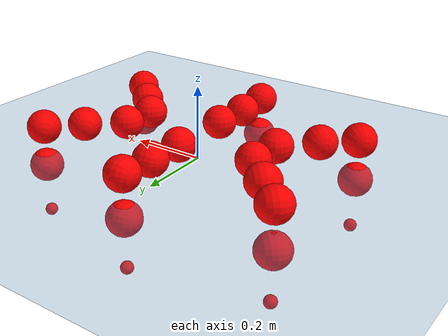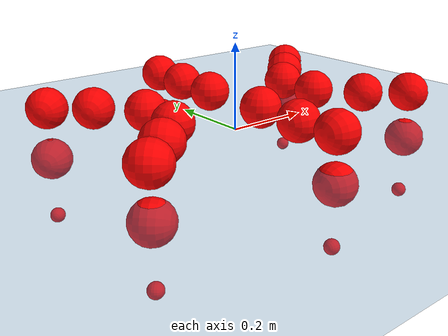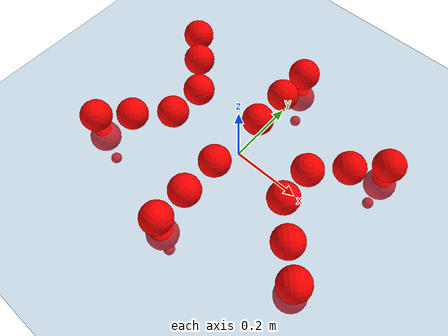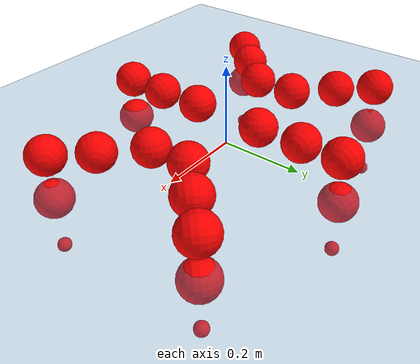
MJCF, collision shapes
<mujoco model="Golem">
  <compiler angle="radian" assetdir="assets" balanceinertia="true" inertiafromgeom="false"/>

  <option timestep="0.005" density="1.2" viscosity="2e-05"/>

  <size nkey="1"/>

  <visual>
    <quality shadowsize="8192"/>
    <map shadowclip="0.5"/>
  </visual>

  <default>
    <default class="/">
      <joint armature="0.01" damping="0.01" frictionloss="0.01"/>
      <geom contype="0" conaffinity="0" group="1" solref="-1000 -80"/>
      <site size="0.01 0.005 0.005" group="5"/>
      <general forcelimited="true" biastype="affine" gainprm="25" biasprm="0 -25 -0.5"/>
      <default class="visual">
        <geom type="mesh" group="2"/>
      </default>
      <default class="collision">
        <geom group="3"/>
      </default>
      <default class="foot">
        <geom size="0.01 0 0" condim="6" group="4" priority="1" solimp="0.015 1 0.01"/>
      </default>
      <default class="reward_collision_sphere">
        <geom group="5" rgba="1 0 0 1"/>
      </default>
    </default>
  </default>

  <asset>
    <texture type="skybox" colorspace="auto" name="//unnamed_texture_0" builtin="gradient" rgb1="0.95 0.95 0.95" rgb2="0.95 0.95 0.95" width="100" height="600"/>
    <texture type="2d" colorspace="auto" name="texplane" builtin="checker" rgb1="0.345 0.575 0.748" rgb2="0.345 0.575 0.748" markrgb="1 1 1" width="512" height="512"/>
    <material name="MatPlane" class="/" texture="texplane" texuniform="true" texrepeat="2 2" specular="0.9"/>
    <mesh name="body" class="/" file="body.stl" scale="0.001 0.001 0.001"/>
    <mesh name="coxa" class="/" file="coxa.stl" scale="0.001 0.001 0.001"/>
    <mesh name="femur" class="/" file="femur.stl" scale="0.001 0.001 0.001"/>
    <mesh name="tibia" class="/" file="tibia.stl" scale="0.001 0.001 0.001"/>
    <mesh name="tarsus" class="/" file="tarsus.stl" scale="0.001 0.001 0.001"/>
  </asset>

  <worldbody>
    <geom name="floor" class="/" size="100 100 0.125" type="plane" group="0" material="MatPlane"/>
    <light name="toplight_shadow" class="/" pos="0 0 5" dir="0.0990148 0.0990148 -0.990148" type="directional" ambient="0.04 0.04 0.04" diffuse="0.55 0.55 0.55" specular="0.12 0.12 0.12"/>
    <light name="toplight_fill" class="/" pos="0 0 5" dir="0.0990148 0.0990148 -0.990148" type="directional" castshadow="false" ambient="0.04 0.04 0.04" diffuse="0.3 0.3 0.3" specular="0.08 0.08 0.08"/>
    <body name="trunk" pos="-0.00278958 -0.000233682 -0.00229306" quat="1 0.000170286 -0.000287556 0.00017186">
      <inertial pos="0.00122204 -0.000854432 -0.00355743" quat="0.999936 0.00430572 0.00734327 -0.00749483" mass="5.33561" diaginertia="0.0340368 0.00840871 0.0205393"/>
      <joint name="//unnamed_joint_0" type="free"/>
      <geom name="//unnamed_geom_1" class="/" pos="0 0 0.0741409" quat="1 0 0 0" type="mesh" rgba="0.9 0.9 0.9 1" mesh="body"/>
      <site name="imu" class="/" pos="0.177013 -0.0049553 0.105313" size="0.0113675"/>
      <camera name="track" class="/" pos="0 -1.93531 0" quat="0.707107 0.707107 0 0" mode="trackcom"/>
      <camera name="ego_camera" class="/" pos="0.166938 0 0.115845" quat="-0.5 -0.5 0.5 0.5"/>
      <body name="coxa_RR" pos="-0.228968 -0.0774661 0.0740963" quat="0.382559 -4.39303e-05 -5.95577e-05 -0.923931">
        <inertial pos="-0.000961839 0.000467308 -0.00155032" quat="0.999908 -0.00350953 -0.00931964 -0.00918029" mass="0.282283" diaginertia="0.0347922 0.00821996 0.020063"/>
        <joint name="coxa_joint_RR" class="/" pos="0 0 0" axis="0.00787843 -0.000264591 -0.999969" range="-3.17546 3.18505" armature="0.0102037" damping="0.00078554" frictionloss="0.00994283"/>
        <geom name="//unnamed_geom_2" class="/" type="mesh" rgba="0.2 0.2 0.2 1" mesh="coxa"/>
        <geom name="//unnamed_geom_3" class="reward_collision_sphere" size="0.04547" pos="-0.0385241 0 0"/>
        <body name="femur_RR" pos="0.0764094 0.000907096 0.00172799" quat="0.499955 -0.500014 0.499722 0.500309">
          <inertial pos="-0.00164427 0.00230966 0.00170579" quat="0.999998 -0.000982437 -0.000286601 0.00180814" mass="0.293557" diaginertia="0.036026 0.00856462 0.0214023"/>
          <joint name="femur_joint_RR" class="/" pos="0 0 0" axis="-0.000236797 -0.00415339 -0.999991" range="-3.15212 3.14238" armature="0.011853" damping="0.0211707" frictionloss="0.0123164"/>
          <geom name="//unnamed_geom_4" class="/" type="mesh" rgba="0.9 0.9 0.9 1" mesh="femur"/>
          <geom name="//unnamed_geom_5" class="reward_collision_sphere" size="0.04547"/>
          <body name="tibia_RR" pos="0.00117571 -0.10328 -0.0014172" quat="0.00038249 1 0.000293189 -0.00017039">
            <inertial pos="0.00233244 -0.00126956 0.000537115" quat="0.999986 0.00487778 -0.000561156 0.00201806" mass="0.301451" diaginertia="0.0346431 0.00852388 0.0209476"/>
            <joint name="tibia_joint_RR" class="/" pos="0 0 0" axis="-0.00253439 0.00498028 0.999984" range="-3.14112 3.14272" armature="0.0106545" damping="0.0198955" frictionloss="0.00983655"/>
            <geom name="//unnamed_geom_6" class="/" type="mesh" rgba="0.2 0.2 0.2 1" mesh="tibia"/>
            <geom name="//unnamed_geom_7" class="reward_collision_sphere" size="0.04547"/>
            <body name="tarsus_RR" pos="0.11092 -0.000280556 -0.000171724" quat="1 0.000455743 0.000210846 0.000198106">
              <inertial pos="0.0746761 -0.00122412 0.000645223" quat="0.50067 0.494567 0.494841 0.50977" mass="0.301034" diaginertia="0.0356032 0.00837115 0.0204716"/>
              <joint name="tarsus_joint_RR" class="/" pos="0 0 0" axis="-0.00412756 0.00642159 0.999971" range="-3.17561 3.16972" armature="0.0108516" damping="0.0142162" frictionloss="0.0113275"/>
              <geom name="//unnamed_geom_8" class="/" type="mesh" rgba="0.9 0.9 0.9 1" mesh="tarsus"/>
              <geom name="foot_1" class="foot" size="0.0125173" pos="0.143823 0 0" quat="0 -0.707107 0 0.707107"/>
              <geom name="//unnamed_geom_10" class="reward_collision_sphere" size="0.04547"/>
              <geom name="//unnamed_geom_11" class="reward_collision_sphere" size="0.0170512" pos="0.138045 0 0"/>
              <site name="foot_1" class="foot" pos="0.143823 0 0" quat="0 -0.707107 0 0.707107" size="0.0113675"/>
            </body>
          </body>
        </body>
      </body>
      <body name="coxa_RM" pos="-0.00249869 -0.129328 0.0777027" quat="0.70721 -0.00105475 0.000150456 -0.707002">
        <inertial pos="-0.00100226 -0.00255434 -0.00063663" quat="0.999951 -0.00221604 0.00844525 -0.00461556" mass="0.300535" diaginertia="0.0362631 0.00847306 0.0215816"/>
        <joint name="coxa_joint_RM" class="/" pos="0 0 0" axis="-0.00172741 0.00526101 -0.999985" range="-3.13193 3.1237" armature="0.011634" damping="0.00472345" frictionloss="0.0119511"/>
        <geom name="//unnamed_geom_12" class="/" type="mesh" rgba="0.2 0.2 0.2 1" mesh="coxa"/>
        <geom name="//unnamed_geom_13" class="reward_collision_sphere" size="0.04547" pos="-0.0385241 0 0"/>
        <body name="femur_RM" pos="0.0759609 -0.000226397 -0.00187372" quat="0.500123 -0.500882 0.499787 0.499207">
          <inertial pos="-0.00220939 -0.00261801 -0.00167372" quat="0.999986 0.000621658 -0.00384754 0.00361726" mass="0.303225" diaginertia="0.0353214 0.00845474 0.0213633"/>
          <joint name="femur_joint_RM" class="/" pos="0 0 0" axis="-0.00851815 0.00898967 -0.999923" stiffness="0.00324117" range="-3.1374 3.18603" armature="0.0122185" damping="0.0179465" frictionloss="0.00993377"/>
          <geom name="//unnamed_geom_14" class="/" type="mesh" rgba="0.9 0.9 0.9 1" mesh="femur"/>
          <geom name="//unnamed_geom_15" class="reward_collision_sphere" size="0.04547"/>
          <body name="tibia_RM" pos="-0.00314591 -0.101451 0.00152837" quat="-0.000961108 0.999999 0.00031619 -0.000379709">
            <inertial pos="-0.000819303 1.0746e-05 0.000930341" quat="1 0.00057464 9.83091e-05 -0.000787381" mass="0.295559" diaginertia="0.036796 0.00891195 0.0209702"/>
            <joint name="tibia_joint_RM" class="/" pos="0 0 0" axis="-0.00986461 0.00508131 0.999938" range="-3.11231 3.08625" armature="0.0119175" damping="0" frictionloss="0.0124611"/>
            <geom name="//unnamed_geom_16" class="/" type="mesh" rgba="0.2 0.2 0.2 1" mesh="tibia"/>
            <geom name="//unnamed_geom_17" class="reward_collision_sphere" size="0.04547"/>
            <body name="tarsus_RM" pos="0.109165 0.000593585 -0.00210244" quat="1 0.000421939 -0.000176735 0.000146639">
              <inertial pos="0.0769952 0.000715896 0.00304696" quat="0.504047 0.509024 0.490711 0.496017" mass="0.296781" diaginertia="0.0365523 0.00858963 0.0206389"/>
              <joint name="tarsus_joint_RM" class="/" pos="0 0 0" axis="-0.0030421 0.00425037 0.999986" range="-3.19167 3.09691" armature="0.011537" damping="0.0116979" frictionloss="0.0113007"/>
              <geom name="//unnamed_geom_18" class="/" type="mesh" rgba="0.9 0.9 0.9 1" mesh="tarsus"/>
              <geom name="foot_2" class="foot" size="0.0117712" pos="0.143823 0 0" quat="0 -0.707107 0 0.707107"/>
              <geom name="//unnamed_geom_20" class="reward_collision_sphere" size="0.04547"/>
              <geom name="//unnamed_geom_21" class="reward_collision_sphere" size="0.0170512" pos="0.138045 0 0"/>
              <site name="foot_2" class="foot" pos="0.143823 0 0" quat="0 -0.707107 0 0.707107" size="0.0113675"/>
            </body>
          </body>
        </body>
      </body>
      <body name="coxa_RF" pos="0.229578 -0.0781507 0.0728839" quat="0.92378 0.000842313 0.000598449 -0.382923">
        <inertial pos="0.00155256 -0.00132123 -0.000174765" quat="0.999996 0.00159024 -0.00196439 0.00123174" mass="0.301783" diaginertia="0.0356003 0.00869832 0.0214207"/>
        <joint name="coxa_joint_RF" class="/" pos="0 0 0" axis="0.00804731 0.00659388 -0.999946" range="-3.14213 3.19422" armature="0.0119721" damping="0" frictionloss="0.0110605"/>
        <geom name="//unnamed_geom_22" class="/" type="mesh" rgba="0.2 0.2 0.2 1" mesh="coxa"/>
        <geom name="//unnamed_geom_23" class="reward_collision_sphere" size="0.04547" pos="-0.0385241 0 0"/>
        <body name="femur_RF" pos="0.0782216 -0.00170477 -0.00311054" quat="0.500203 -0.499771 0.500164 0.499861">
          <inertial pos="-0.000914262 -8.8796e-05 0.0028572" quat="0.999998 -0.00188213 0.000185356 -7.24255e-06" mass="0.291913" diaginertia="0.0350743 0.00854948 0.0216174"/>
          <joint name="femur_joint_RF" class="/" pos="0 0 0" axis="-0.000475979 0.000152519 -1" range="-3.09356 3.13439" armature="0.0113485" damping="0.0099084" frictionloss="0.00975722"/>
          <geom name="//unnamed_geom_24" class="/" type="mesh" rgba="0.9 0.9 0.9 1" mesh="femur"/>
          <geom name="//unnamed_geom_25" class="reward_collision_sphere" size="0.04547"/>
          <body name="tibia_RF" pos="-0.0035098 -0.104947 0.00216029" quat="-0.000278061 1 -5.6711e-05 -0.000102225">
            <inertial pos="0.00289969 -0.00206357 -0.00025161" quat="0.999952 -0.000912857 -0.00101304 0.00973977" mass="0.292293" diaginertia="0.0342636 0.00819189 0.0209069"/>
            <joint name="tibia_joint_RF" class="/" pos="0 0 0" axis="0.00882508 0.00971295 0.999914" range="-3.14088 3.13583" armature="0.0111458" damping="0.0151641" frictionloss="0.0119251"/>
            <geom name="//unnamed_geom_26" class="/" type="mesh" rgba="0.2 0.2 0.2 1" mesh="tibia"/>
            <geom name="//unnamed_geom_27" class="reward_collision_sphere" size="0.04547"/>
            <body name="tarsus_RF" pos="0.113874 0.000226118 -0.00124904" quat="0.999999 0.000752227 -0.000420934 -0.000912143">
              <inertial pos="0.0793704 -0.00240781 0.00124745" quat="0.501442 0.498018 0.502708 0.497814" mass="0.288162" diaginertia="0.0353039 0.00824576 0.0216002"/>
              <joint name="tarsus_joint_RF" class="/" pos="0 0 0" axis="0.0123236 0.00916345 0.999882" range="-3.19657 3.14109" armature="0.0112465" damping="0.0166132" frictionloss="0.0110312"/>
              <geom name="//unnamed_geom_28" class="/" type="mesh" rgba="0.9 0.9 0.9 1" mesh="tarsus"/>
              <geom name="foot_3" class="foot" size="0.011101" pos="0.143823 0 0" quat="0 -0.707107 0 0.707107"/>
              <geom name="//unnamed_geom_30" class="reward_collision_sphere" size="0.04547"/>
              <geom name="//unnamed_geom_31" class="reward_collision_sphere" size="0.0170512" pos="0.138045 0 0"/>
              <site name="foot_3" class="foot" pos="0.143823 0 0" quat="0 -0.707107 0 0.707107" size="0.0113675"/>
            </body>
          </body>
        </body>
      </body>
      <body name="coxa_LR" pos="-0.227074 0.0818104 0.0753996" quat="0.38265 0.000876164 -0.000550354 0.923893">
        <inertial pos="0.000635174 -9.19903e-05 0.00277371" quat="0.999986 0.00254703 0.00338585 0.00309226" mass="0.296295" diaginertia="0.0354011 0.00869584 0.0205662"/>
        <joint name="coxa_joint_LR" class="/" pos="0 0 0" axis="-0.00071044 -2.33418e-05 -1" range="-3.1807 3.1565" armature="0.010443" damping="0.00363431" frictionloss="0.0101202"/>
        <geom name="//unnamed_geom_32" class="/" type="mesh" rgba="0.2 0.2 0.2 1" mesh="coxa"/>
        <geom name="//unnamed_geom_33" class="reward_collision_sphere" size="0.04547" pos="-0.0385241 0 0"/>
        <body name="femur_LR" pos="0.0757009 -0.00357067 0.000298291" quat="0.500095 -0.499982 0.499867 0.500056">
          <inertial pos="0.00257318 -0.00200413 0.00274113" quat="0.999983 -0.00356413 0.00355319 -0.00302156" mass="0.287185" diaginertia="0.0351487 0.00844697 0.0210511"/>
          <joint name="femur_joint_LR" class="/" pos="0 0 0" axis="-0.00538803 -0.00380128 0.999978" range="-3.17554 3.0919" armature="0.0100758" damping="0" frictionloss="0.011509"/>
          <geom name="//unnamed_geom_34" class="/" type="mesh" rgba="0.9 0.9 0.9 1" mesh="femur"/>
          <geom name="//unnamed_geom_35" class="reward_collision_sphere" size="0.04547"/>
          <body name="tibia_LR" pos="0.00316607 -0.103669 -0.000167716" quat="0.00098078 0.999999 -0.000111662 -0.000534536">
            <inertial pos="0.00228916 -0.00257354 0.00138147" quat="0.999999 -0.000819515 -0.000395187 0.000685475" mass="0.304518" diaginertia="0.0349435 0.0087833 0.0201883"/>
            <joint name="tibia_joint_LR" class="/" pos="0 0 0" axis="0.0121681 -0.00328318 -0.999921" range="-3.1612 3.08508" armature="0.0107041" damping="0.0104949" frictionloss="0.0116655"/>
            <geom name="//unnamed_geom_36" class="/" type="mesh" rgba="0.2 0.2 0.2 1" mesh="tibia"/>
            <geom name="//unnamed_geom_37" class="reward_collision_sphere" size="0.04547"/>
            <body name="tarsus_LR" pos="0.11596 -0.00111532 -0.0023807" quat="0.999999 0.000558733 0.0010274 -0.000130356">
              <inertial pos="0.0750624 -0.00254352 -0.000730933" quat="0.499663 0.500242 0.500019 0.500075" mass="0.294841" diaginertia="0.0354276 0.00833301 0.0217997"/>
              <joint name="tarsus_joint_LR" class="/" pos="0 0 0" axis="-0.00149004 0.00382651 -0.999992" range="-3.13554 3.12769" armature="0.0123408" damping="0.0294654" frictionloss="0.0128065"/>
              <geom name="//unnamed_geom_38" class="/" type="mesh" rgba="0.9 0.9 0.9 1" mesh="tarsus"/>
              <geom name="foot_4" class="foot" size="0.011078" pos="0.143823 0 0" quat="0.707107 0 -0.707107 0"/>
              <geom name="//unnamed_geom_40" class="reward_collision_sphere" size="0.04547"/>
              <geom name="//unnamed_geom_41" class="reward_collision_sphere" size="0.0170512" pos="0.138045 0 0"/>
              <site name="foot_4" class="foot" pos="0.143823 0 0" quat="0.707107 0 -0.707107 0" size="0.0113675"/>
            </body>
          </body>
        </body>
      </body>
      <body name="coxa_LM" pos="-0.00185268 0.126773 0.0755305" quat="0.707315 0.00044021 6.25638e-05 0.706898">
        <inertial pos="0.00277247 -0.000187518 0.00166656" quat="0.999983 -0.00052585 -0.00580875 -0.000397972" mass="0.284713" diaginertia="0.0344095 0.00820629 0.0201378"/>
        <joint name="coxa_joint_LM" class="/" pos="0 0 0" axis="0.00368977 -0.00537761 -0.999979" stiffness="0.00707137" range="-3.16095 3.14226" armature="0.0114951" damping="0" frictionloss="0.00987256"/>
        <geom name="//unnamed_geom_42" class="/" type="mesh" rgba="0.2 0.2 0.2 1" mesh="coxa"/>
        <geom name="//unnamed_geom_43" class="reward_collision_sphere" size="0.04547" pos="-0.0385241 0 0"/>
        <body name="femur_LM" pos="0.073455 0.000334645 0.00176863" quat="0.500128 -0.500121 0.499839 0.499912">
          <inertial pos="0.00268101 -0.000120377 -0.00243382" quat="0.999991 -0.00364317 -0.00113229 0.00166091" mass="0.299677" diaginertia="0.0354862 0.00889056 0.0223084"/>
          <joint name="femur_joint_LM" class="/" pos="0 0 0" axis="-0.00423688 0.0102856 0.999938" range="-3.09478 3.09762" armature="0.0113661" damping="0.0114662" frictionloss="0.0113025"/>
          <geom name="//unnamed_geom_44" class="/" type="mesh" rgba="0.9 0.9 0.9 1" mesh="femur"/>
          <geom name="//unnamed_geom_45" class="reward_collision_sphere" size="0.04547"/>
          <body name="tibia_LM" pos="-0.00179129 -0.100379 -0.00113521" quat="5.8727e-05 1 0.000178447 0.000366726">
            <inertial pos="-0.00226133 0.00016869 0.000125227" quat="0.999991 -0.000270076 -0.00234209 -0.00354108" mass="0.288842" diaginertia="0.0345237 0.00834718 0.0212942"/>
            <joint name="tibia_joint_LM" class="/" pos="0 0 0" axis="-0.00236598 0.000547356 -0.999997" stiffness="0.0120738" range="-3.13084 3.09935" armature="0.00976214" damping="0.0139024" frictionloss="0.0105915"/>
            <geom name="//unnamed_geom_46" class="/" type="mesh" rgba="0.2 0.2 0.2 1" mesh="tibia"/>
            <geom name="//unnamed_geom_47" class="reward_collision_sphere" size="0.04547"/>
            <body name="tarsus_LM" pos="0.116 0.00236748 -0.00166206" quat="1 -0.000325949 0.000430135 -0.000204434">
              <inertial pos="0.0746033 0.000297024 -0.00264803" quat="0.506805 0.498677 0.4895 0.504836" mass="0.293636" diaginertia="0.0338914 0.00848649 0.0202843"/>
              <joint name="tarsus_joint_LM" class="/" pos="0 0 0" axis="0.00333233 -0.00283577 -0.99999" range="-3.08325 3.13767" armature="0.0118262" damping="0.0183455" frictionloss="0.0107705"/>
              <geom name="//unnamed_geom_48" class="/" type="mesh" rgba="0.9 0.9 0.9 1" mesh="tarsus"/>
              <geom name="foot_5" class="foot" size="0.0119841" pos="0.143823 0 0" quat="0.707107 0 -0.707107 0"/>
              <geom name="//unnamed_geom_50" class="reward_collision_sphere" size="0.04547"/>
              <geom name="//unnamed_geom_51" class="reward_collision_sphere" size="0.0170512" pos="0.138045 0 0"/>
              <site name="foot_5" class="foot" pos="0.143823 0 0" quat="0.707107 0 -0.707107 0" size="0.0113675"/>
            </body>
          </body>
        </body>
      </body>
      <body name="coxa_LF" pos="0.227897 0.0796228 0.0756981" quat="0.924133 9.423e-05 -4.58248e-05 0.38207">
        <inertial pos="-7.19994e-05 -0.00168276 -0.000469144" quat="0.99992 -0.00827922 -0.00150595 0.00948881" mass="0.301368" diaginertia="0.0357515 0.00868081 0.0214224"/>
        <joint name="coxa_joint_LF" class="/" pos="0 0 0" axis="-0.00105629 0.00886168 -0.99996" range="-3.0828 3.13446" armature="0.0126773" damping="0.017361" frictionloss="0.00981048"/>
        <geom name="//unnamed_geom_52" class="/" type="mesh" rgba="0.2 0.2 0.2 1" mesh="coxa"/>
        <geom name="//unnamed_geom_53" class="reward_collision_sphere" size="0.04547" pos="-0.0385241 0 0"/>
        <body name="femur_LF" pos="0.0736193 -0.00176029 0.00133363" quat="0.499897 -0.499902 0.50003 0.50017">
          <inertial pos="0.000746243 0.00264694 -0.00254187" quat="1 -3.93362e-06 -2.34523e-06 1.86992e-06" mass="0.302265" diaginertia="0.036544 0.0087438 0.0207718"/>
          <joint name="femur_joint_LF" class="/" pos="0 0 0" axis="0.00400196 -0.000196661 0.999992" stiffness="0.00118024" range="-3.13433 3.13915" armature="0.01289" damping="0" frictionloss="0.0116759"/>
          <geom name="//unnamed_geom_54" class="/" type="mesh" rgba="0.9 0.9 0.9 1" mesh="femur"/>
          <geom name="//unnamed_geom_55" class="reward_collision_sphere" size="0.04547"/>
          <body name="tibia_LF" pos="0.000851222 -0.106987 0.000918899" quat="-0.000165216 1 -4.48126e-05 4.09221e-05">
            <inertial pos="0.00218856 0.00228953 0.00155111" quat="0.999988 0.00135425 -0.000156768 -0.0047381" mass="0.292759" diaginertia="0.0344671 0.00875446 0.021259"/>
            <joint name="tibia_joint_LF" class="/" pos="0 0 0" axis="-0.00648595 0.00391469 -0.999971" stiffness="0.00997078" range="-3.08393 3.09357" armature="0.011585" damping="0.00223957" frictionloss="0.00982437"/>
            <geom name="//unnamed_geom_56" class="/" type="mesh" rgba="0.2 0.2 0.2 1" mesh="tibia"/>
            <geom name="//unnamed_geom_57" class="reward_collision_sphere" size="0.04547"/>
            <body name="tarsus_LF" pos="0.1103 0.00233489 0.000175859" quat="1 0.000248245 1.02292e-05 1.05422e-05">
              <inertial pos="0.0745928 0.00010529 0.00221109" quat="0.493601 0.508131 0.505347 0.492731" mass="0.291881" diaginertia="0.0359295 0.0084944 0.0212351"/>
              <joint name="tarsus_joint_LF" class="/" pos="0 0 0" axis="0.00200308 0.00176743 -0.999996" stiffness="0.00831883" range="-3.19382 3.09602" armature="0.0128882" damping="0.0111419" frictionloss="0.0127798"/>
              <geom name="//unnamed_geom_58" class="/" type="mesh" rgba="0.9 0.9 0.9 1" mesh="tarsus"/>
              <geom name="foot_6" class="foot" size="0.0123924" pos="0.143823 0 0" quat="0.707107 0 -0.707107 0"/>
              <geom name="//unnamed_geom_60" class="reward_collision_sphere" size="0.04547"/>
              <geom name="//unnamed_geom_61" class="reward_collision_sphere" size="0.0170512" pos="0.138045 0 0"/>
              <site name="foot_6" class="foot" pos="0.143823 0 0" quat="0.707107 0 -0.707107 0" size="0.0113675"/>
            </body>
          </body>
        </body>
      </body>
    </body>
  </worldbody>

  <contact>
    <pair class="/" geom1="floor" geom2="foot_1" name="//unnamed_contact_0"/>
    <pair class="/" geom1="floor" geom2="foot_2" name="//unnamed_contact_1"/>
    <pair class="/" geom1="floor" geom2="foot_3" name="//unnamed_contact_2"/>
    <pair class="/" geom1="floor" geom2="foot_4" name="//unnamed_contact_3"/>
    <pair class="/" geom1="floor" geom2="foot_5" name="//unnamed_contact_4"/>
    <pair class="/" geom1="floor" geom2="foot_6" name="//unnamed_contact_5"/>
  </contact>

  <actuator>
    <general name="coxa_joint_RR" class="/" joint="coxa_joint_RR" forcerange="-8.35084 8.35084" gainprm="28.8021" biasprm="0 -28.8021 -0.608837"/>
    <general name="femur_joint_RR" class="/" joint="femur_joint_RR" forcerange="-8.43534 8.43534" gainprm="28.8021" biasprm="0 -28.8021 -0.608837"/>
    <general name="tibia_joint_RR" class="/" joint="tibia_joint_RR" forcerange="-8.35873 8.35873" gainprm="28.8021" biasprm="0 -28.8021 -0.608837"/>
    <general name="tarsus_joint_RR" class="/" joint="tarsus_joint_RR" forcerange="-7.98542 7.98542" gainprm="28.8021" biasprm="0 -28.8021 -0.608837"/>
    <general name="coxa_joint_RM" class="/" joint="coxa_joint_RM" forcerange="-8.60519 8.60519" gainprm="28.8021" biasprm="0 -28.8021 -0.608837"/>
    <general name="femur_joint_RM" class="/" joint="femur_joint_RM" forcerange="-8.43139 8.43139" gainprm="28.8021" biasprm="0 -28.8021 -0.608837"/>
    <general name="tibia_joint_RM" class="/" joint="tibia_joint_RM" forcerange="-8.40203 8.40203" gainprm="28.8021" biasprm="0 -28.8021 -0.608837"/>
    <general name="tarsus_joint_RM" class="/" joint="tarsus_joint_RM" forcerange="-7.41903 7.41903" gainprm="28.8021" biasprm="0 -28.8021 -0.608837"/>
    <general name="coxa_joint_RF" class="/" joint="coxa_joint_RF" forcerange="-8.58017 8.58017" gainprm="28.8021" biasprm="0 -28.8021 -0.608837"/>
    <general name="femur_joint_RF" class="/" joint="femur_joint_RF" forcerange="-8.34095 8.34095" gainprm="28.8021" biasprm="0 -28.8021 -0.608837"/>
    <general name="tibia_joint_RF" class="/" joint="tibia_joint_RF" forcerange="-8.27769 8.27769" gainprm="28.8021" biasprm="0 -28.8021 -0.608837"/>
    <general name="tarsus_joint_RF" class="/" joint="tarsus_joint_RF" forcerange="-8.27104 8.27104" gainprm="28.8021" biasprm="0 -28.8021 -0.608837"/>
    <general name="coxa_joint_LR" class="/" joint="coxa_joint_LR" forcerange="-7.96301 7.96301" gainprm="28.8021" biasprm="0 -28.8021 -0.608837"/>
    <general name="femur_joint_LR" class="/" joint="femur_joint_LR" forcerange="-7.467 7.467" gainprm="28.8021" biasprm="0 -28.8021 -0.608837"/>
    <general name="tibia_joint_LR" class="/" joint="tibia_joint_LR" forcerange="-8.03839 8.03839" gainprm="28.8021" biasprm="0 -28.8021 -0.608837"/>
    <general name="tarsus_joint_LR" class="/" joint="tarsus_joint_LR" forcerange="-8.35804 8.35804" gainprm="28.8021" biasprm="0 -28.8021 -0.608837"/>
    <general name="coxa_joint_LM" class="/" joint="coxa_joint_LM" forcerange="-8.21506 8.21506" gainprm="28.8021" biasprm="0 -28.8021 -0.608837"/>
    <general name="femur_joint_LM" class="/" joint="femur_joint_LM" forcerange="-7.64379 7.64379" gainprm="28.8021" biasprm="0 -28.8021 -0.608837"/>
    <general name="tibia_joint_LM" class="/" joint="tibia_joint_LM" forcerange="-8.29966 8.29966" gainprm="28.8021" biasprm="0 -28.8021 -0.608837"/>
    <general name="tarsus_joint_LM" class="/" joint="tarsus_joint_LM" forcerange="-9.09132 9.09132" gainprm="28.8021" biasprm="0 -28.8021 -0.608837"/>
    <general name="coxa_joint_LF" class="/" joint="coxa_joint_LF" forcerange="-8.07106 8.07106" gainprm="28.8021" biasprm="0 -28.8021 -0.608837"/>
    <general name="femur_joint_LF" class="/" joint="femur_joint_LF" forcerange="-9.17805 9.17805" gainprm="28.8021" biasprm="0 -28.8021 -0.608837"/>
    <general name="tibia_joint_LF" class="/" joint="tibia_joint_LF" forcerange="-8.25242 8.25242" gainprm="28.8021" biasprm="0 -28.8021 -0.608837"/>
    <general name="tarsus_joint_LF" class="/" joint="tarsus_joint_LF" forcerange="-7.85255 7.85255" gainprm="28.8021" biasprm="0 -28.8021 -0.608837"/>
  </actuator>

  <sensor>
    <gyro site="imu" name="imu_angular_velocity"/>
    <velocimeter site="imu" name="imu_linear_velocity"/>
    <framelinvel objtype="site" objname="foot_1" name="foot_1_global_linear_velocity"/>
    <framelinvel objtype="site" objname="foot_2" name="foot_2_global_linear_velocity"/>
    <framelinvel objtype="site" objname="foot_3" name="foot_3_global_linear_velocity"/>
    <framelinvel objtype="site" objname="foot_4" name="foot_4_global_linear_velocity"/>
    <framelinvel objtype="site" objname="foot_5" name="foot_5_global_linear_velocity"/>
    <framelinvel objtype="site" objname="foot_6" name="foot_6_global_linear_velocity"/>
  </sensor>

  <keyframe>
    <key name="home" qpos="0 0 0.1457 1 0 0 0 0 0 0 0 0 0 0 0 0 0 0 0 0 0 0 0 0 0 0 0 0 0 0 0"/>
  </keyframe>
</mujoco>
